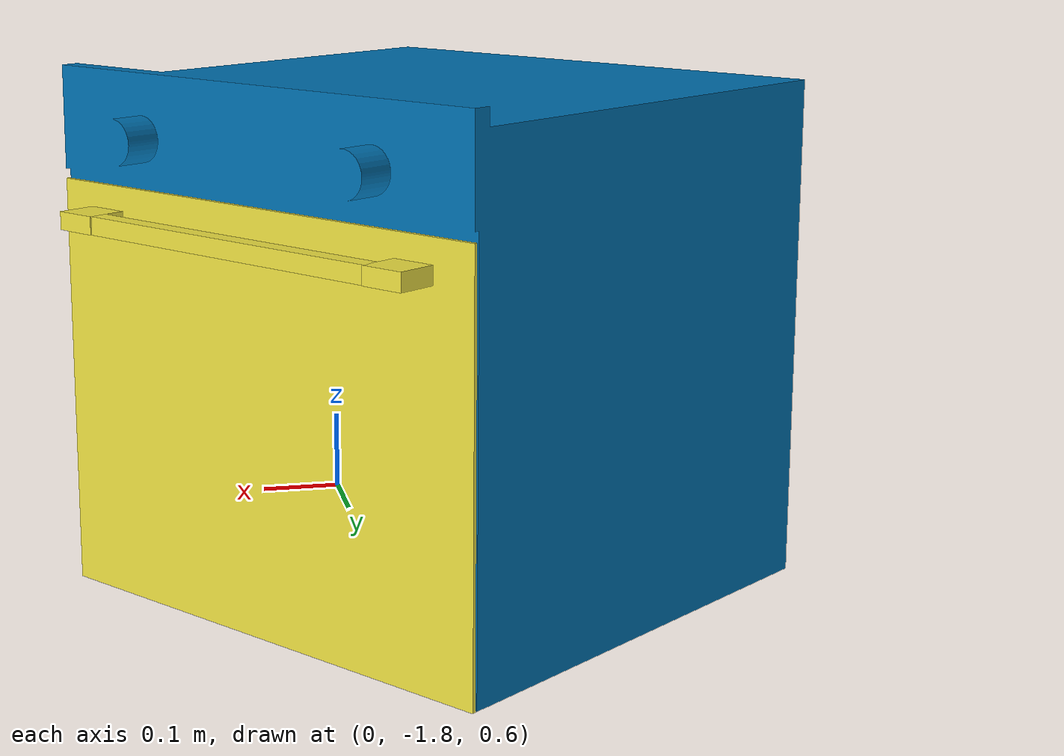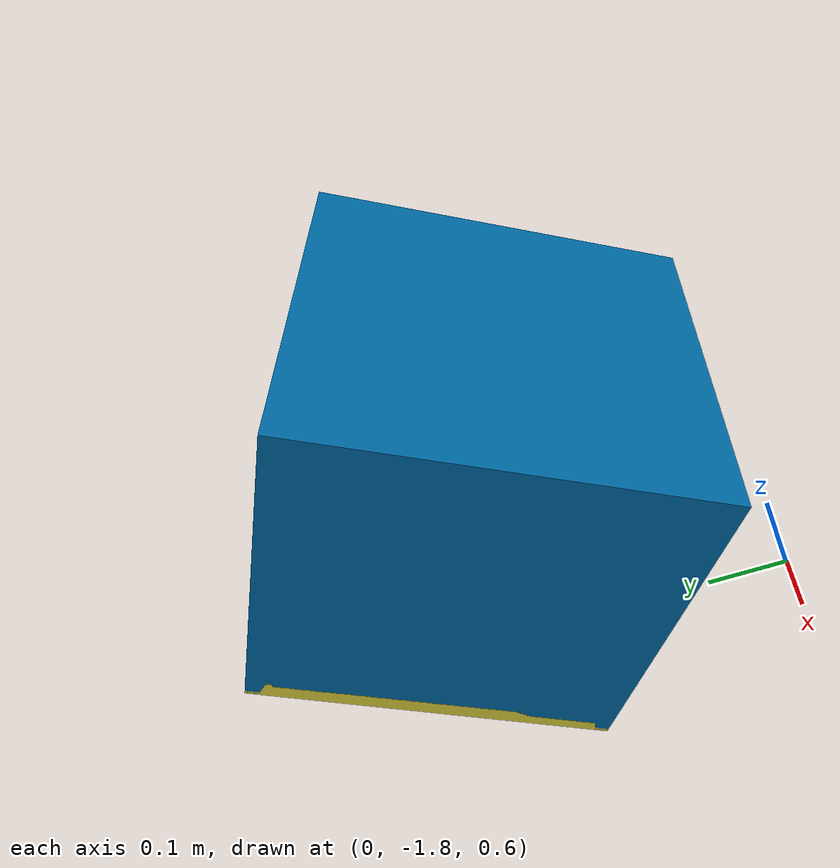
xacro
<?xml version='1.0' encoding='ASCII'?>
<!-- NOTE: this should be identical to the object model of the affordance node -->
<robot name="zanussi_oven" xmlns:xacro="http://www.ros.org/wiki/xacro" >
  <xacro:arg name="prefix" default=""/>
  <xacro:arg name="resources_directory" default=""/>
  <xacro:arg name="resources_prefix" default=""/>
  <xacro:property name="prefix" default="$(arg prefix)"/>
  <xacro:property name="resources_directory" default="$(arg resources_directory)"/>
  <xacro:property name="resources_prefix" default="$(arg resources_prefix)"/>
  <link name="world"/>
  <link name="base"/>
  <link name="${prefix}handle_link_2"/>
  <link name="${prefix}handle_link">
    <inertial>
      <origin xyz="0.0 0.0 0.0" rpy="0.0 -0.0 0.0"/>
      <mass value="3.0"/>
      <inertia ixx="0.4333886585" ixy="0.0" ixz="0.0" iyy="0.39146708384" iyz="0.0" izz="0.042168942339999994"/>
    </inertial>
    <visual>
      <geometry>
        <mesh filename="${resources_directory}${resources_prefix}consolidated_collision_meshes/door_mesh_2.obj" scale="1 1 1"/>
      </geometry>
      <origin xyz="0 0 0" rpy="0.0 0.0 0.0"/>
    </visual>
    <visual>
      <geometry>
        <box size="0.40 0.02 0.02"/>
      </geometry>
      <origin xyz="0.297 0.428 0.051" rpy="0.0 0.0 0.0"/>
    </visual>
    <visual>
      <geometry>
        <box size="0.05 0.02 0.045"/>
      </geometry>
      <origin xyz="0.072 0.428 0.040" rpy="0.0 0.0 0.0"/>
    </visual>
    <visual>
      <geometry>
        <box size="0.05 0.02 0.045"/>
      </geometry>
      <origin xyz="0.52 0.428 0.040" rpy="0.0 0.0 0.0"/>
    </visual>
    <collision>
      <geometry>
        <mesh filename="${resources_directory}${resources_prefix}consolidated_collision_meshes/door_mesh_2.obj" scale="1 1 1"/>
      </geometry>
      <origin xyz="0.0 0.0 0.0" rpy="0.0 0.0 0.0"/>
    </collision>
    <collision>
      <geometry>
        <box size="0.40 0.02 0.02"/>
      </geometry>
      <origin xyz="0.297 0.428 0.051" rpy="0.0 0.0 0.0"/>
    </collision>
    <collision>
      <geometry>
        <box size="0.05 0.02 0.045"/>
      </geometry>
      <origin xyz="0.072 0.428 0.040" rpy="0.0 0.0 0.0"/>
    </collision>
    <collision>
      <geometry>
        <box size="0.05 0.02 0.045"/>
      </geometry>
      <origin xyz="0.52 0.428 0.040" rpy="0.0 0.0 0.0"/>
    </collision>
  </link>
  <link name="${prefix}link_3">
    <visual>
      <geometry>
        <mesh filename="package://mppi_manipulation/data/objects/zanussi/consolidated_collision_meshes/base_mesh_v.obj" scale="1 1 1"/>
      </geometry>
      <origin xyz="0 0 0" rpy="0.0 0.0 0.0"/>
    </visual>
    <collision>
      <geometry>
        <mesh filename="${resources_directory}${resources_prefix}consolidated_collision_meshes/base_mesh.obj" scale="1 1 1"/>
      </geometry>
      <origin xyz="0.0 0.0 0.0" rpy="0.0 0.0 0.0"/>
    </collision>
  </link>
  <joint name="fixed" type="fixed">
    <parent link="world"/>
    <child link="base"/>
    <origin xyz="-0.015 -0.97 1.21" rpy="0.0 0.0 3.8"/>
    <axis xyz="1.0 0.0 0.0"/>
  </joint>
  <joint name="articulation_joint" type="revolute">
    <parent link="${prefix}link_3"/>
    <child link="${prefix}handle_link"/>
    <!--open tasks-->
    <origin xyz="-0.594 -0.589 -0.015" rpy="0.0 0.0 0.0"/>
    <!--close tasks-->
    <axis xyz="1.0 0.0 0.0"/>
    <limit effort="1000.0" velocity="1.0" lower="0.0" upper="1.5707963267948966"/>
    <dynamics damping="20.0" friction="40.0"/>
  </joint>
  <joint name="${prefix}handle_joint" type="fixed">
    <parent link="${prefix}handle_link"/>
    <child link="${prefix}handle_link_2"/>
    <origin xyz="0 0 0" rpy="0.0 0.0 0.0"/>
  </joint>
  <joint name="${prefix}joint_3" type="fixed">
    <parent link="base"/>
    <child link="${prefix}link_3"/>
    <origin xyz="0.0 0.0 0.0" rpy="1.570796326794897 -0.0 -1.570796326794897"/>
    <axis xyz="1.0 0.0 0.0"/>
  </joint>
</robot>
